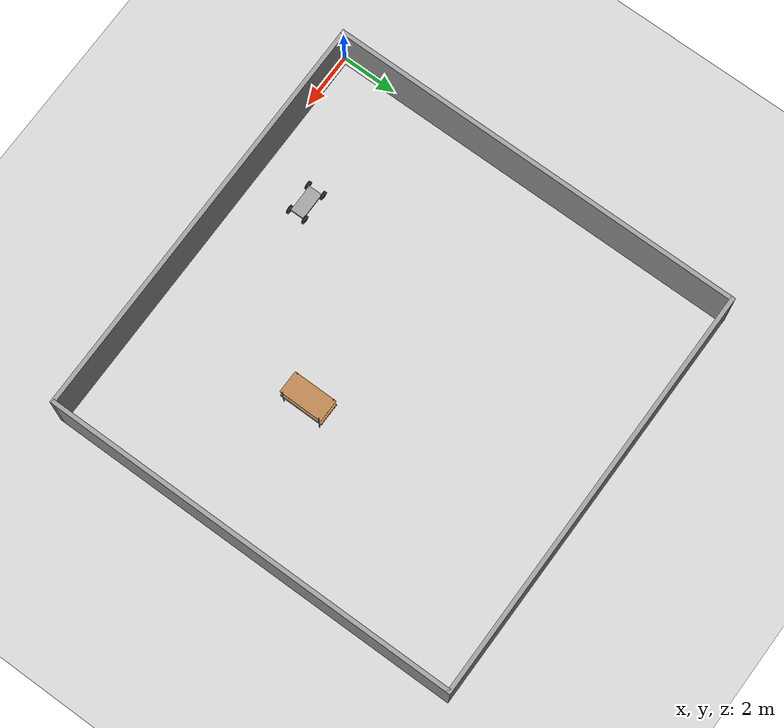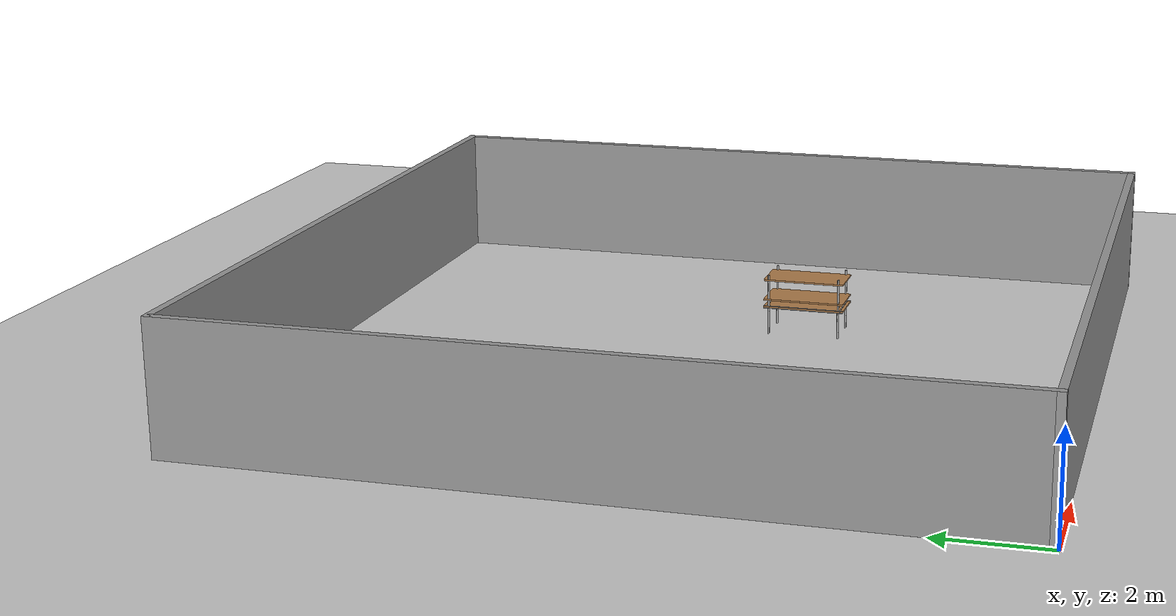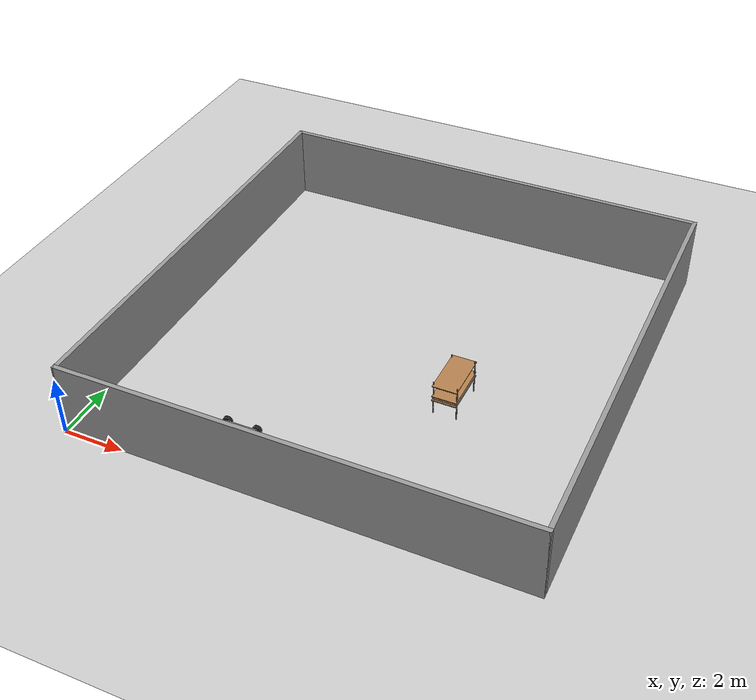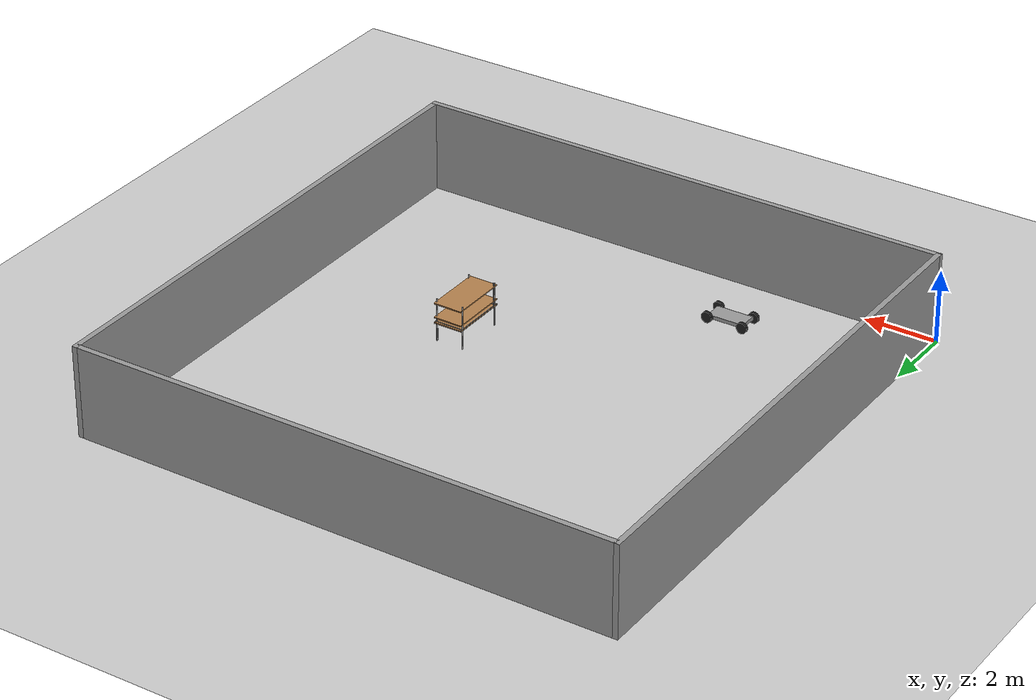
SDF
<sdf version="1.7">
 <world name="default">
  <model name="ground_plane">
   <static>1</static>
   <link name="link">
    <collision name="collision">
     <geometry><plane><normal>0 0 1</normal><size>100 100</size></plane></geometry>
     <surface><friction><ode><mu>100</mu><mu2>50</mu2></ode></friction></surface>
    </collision>
    <visual name="visual">
     <cast_shadows>0</cast_shadows>
     <geometry><plane><normal>0 0 1</normal><size>100 100</size></plane></geometry>
     <material>
      <script><uri>file://media/materials/scripts/gazebo.material</uri><name>Gazebo/Grey</name></script>
     </material>
    </visual>
   </link>
  </model>
  <model name="Wall">
   <pose>7.5 7.5 0 0 -0 0</pose>
   <link name="Wall_2">
    <collision name="Wall_2_Collision">
     <geometry><box><size>15 0.15 2.5</size></box></geometry>
     <pose>0 0 1.25 0 -0 0</pose>
    </collision>
    <visual name="Wall_2_Visual">
     <pose>0 0 1.25 0 -0 0</pose>
     <geometry><box><size>15 0.15 2.5</size></box></geometry>
     <material>
      <script><uri>file://media/materials/scripts/gazebo.material</uri><name>Gazebo/Grey</name></script>
      <ambient>1 1 1 1</ambient>
     </material>
     <meta><layer>0</layer></meta>
    </visual>
    <pose>-7.425 -0 0 0 -0 1.5708</pose>
   </link>
   <link name="Wall_5">
    <collision name="Wall_5_Collision">
     <geometry><box><size>15 0.15 2.5</size></box></geometry>
     <pose>0 0 1.25 0 -0 0</pose>
    </collision>
    <visual name="Wall_5_Visual">
     <pose>0 0 1.25 0 -0 0</pose>
     <geometry><box><size>15 0.15 2.5</size></box></geometry>
     <material>
      <script><uri>file://media/materials/scripts/gazebo.material</uri><name>Gazebo/Grey</name></script>
      <ambient>1 1 1 1</ambient>
     </material>
     <meta><layer>0</layer></meta>
    </visual>
    <pose>0 7.425 0 0 -0 0</pose>
   </link>
   <link name="Wall_7">
    <collision name="Wall_7_Collision">
     <geometry><box><size>15 0.15 2.5</size></box></geometry>
     <pose>0 0 1.25 0 -0 0</pose>
    </collision>
    <visual name="Wall_7_Visual">
     <pose>0 0 1.25 0 -0 0</pose>
     <geometry><box><size>15 0.15 2.5</size></box></geometry>
     <material>
      <script><uri>file://media/materials/scripts/gazebo.material</uri><name>Gazebo/Grey</name></script>
      <ambient>1 1 1 1</ambient>
     </material>
     <meta><layer>0</layer></meta>
    </visual>
    <pose>0 -7.425 0 0 -0 0</pose>
   </link>
   <link name="Wall_9">
    <collision name="Wall_9_Collision">
     <geometry><box><size>15 0.15 2.5</size></box></geometry>
     <pose>0 0 1.25 0 -0 0</pose>
    </collision>
    <visual name="Wall_9_Visual">
     <pose>0 0 1.25 0 -0 0</pose>
     <geometry><box><size>15 0.15 2.5</size></box></geometry>
     <material>
      <script><uri>file://media/materials/scripts/gazebo.material</uri><name>Gazebo/Grey</name></script>
      <ambient>1 1 1 1</ambient>
     </material>
     <meta><layer>0</layer></meta>
    </visual>
    <pose>7.425 -0 0 0 -0 -1.5708</pose>
   </link>
   <static>1</static>
  </model>
  <model name="warehouse_pallet">
   <link name="warehouse_pallet::link">
    <pose>0 0 -0 0 -0 1.57</pose>
    <inertial>
     <inertia>
      <ixx>0.0267042</ixx>
      <ixy>0</ixy>
      <ixz>0</ixz>
      <iyy>0.0937875</iyy>
      <iyz>0</iyz>
      <izz>0.120417</izz>
     </inertia>
     <mass>0.1</mass>
    </inertial>
    <visual name="holding1_visual">
     <pose>0 0.39 0.45 0 -0 0</pose>
     <geometry><box><size>1.6 0.02 0.05</size></box></geometry>
     <material>
      <script><uri>file://media/materials/scripts/gazebo.material</uri><name>Gazebo/Grey</name></script>
      <shader type="pixel"><normal_map>__default__</normal_map></shader>
      <ambient>0.3 0.3 0.3 1</ambient>
      <diffuse>0.7 0.7 0.7 1</diffuse>
      <specular>0.01 0.01 0.01 1</specular>
      <emissive>0 0 0 1</emissive>
     </material>
    </visual>
    <visual name="front_left_leg">
     <pose>0.7 0.38 0.5 0 -0 0</pose>
     <geometry><cylinder><radius>0.02</radius><length>1.2</length></cylinder></geometry>
     <material>
      <script><uri>file://media/materials/scripts/gazebo.material</uri><name>Gazebo/Grey</name></script>
      <shader type="pixel"><normal_map>__default__</normal_map></shader>
      <ambient>0.3 0.3 0.3 1</ambient>
      <diffuse>0.7 0.7 0.7 1</diffuse>
      <specular>0.01 0.01 0.01 1</specular>
      <emissive>0 0 0 1</emissive>
     </material>
    </visual>
    <visual name="front_right_leg">
     <pose>0.7 -0.38 0.5 0 -0 0</pose>
     <geometry><cylinder><radius>0.02</radius><length>1.2</length></cylinder></geometry>
     <material>
      <script><uri>file://media/materials/scripts/gazebo.material</uri><name>Gazebo/Grey</name></script>
      <shader type="pixel"><normal_map>__default__</normal_map></shader>
      <ambient>0.3 0.3 0.3 1</ambient>
      <diffuse>0.7 0.7 0.7 1</diffuse>
      <specular>0.01 0.01 0.01 1</specular>
      <emissive>0 0 0 1</emissive>
     </material>
    </visual>
    <visual name="back_right_leg">
     <pose>-0.7 -0.38 0.5 0 -0 0</pose>
     <geometry><cylinder><radius>0.02</radius><length>1.2</length></cylinder></geometry>
     <material>
      <script><uri>file://media/materials/scripts/gazebo.material</uri><name>Gazebo/Grey</name></script>
      <shader type="pixel"><normal_map>__default__</normal_map></shader>
      <ambient>0.3 0.3 0.3 1</ambient>
      <diffuse>0.7 0.7 0.7 1</diffuse>
      <specular>0.01 0.01 0.01 1</specular>
      <emissive>0 0 0 1</emissive>
     </material>
    </visual>
    <visual name="back_left_leg">
     <pose>-0.7 0.38 0.5 0 -0 0</pose>
     <geometry><cylinder><radius>0.02</radius><length>1.2</length></cylinder></geometry>
     <material>
      <script><uri>file://media/materials/scripts/gazebo.material</uri><name>Gazebo/Grey</name></script>
      <shader type="pixel"><normal_map>__default__</normal_map></shader>
      <ambient>0.3 0.3 0.3 1</ambient>
      <diffuse>0.7 0.7 0.7 1</diffuse>
      <specular>0.01 0.01 0.01 1</specular>
      <emissive>0 0 0 1</emissive>
     </material>
    </visual>
    <visual name="visual1">
     <pose>0 0 0.45 0 -0 0</pose>
     <geometry><box><size>1.6 0.8 0.03</size></box></geometry>
     <material>
      <script><uri>file://media/materials/scripts/gazebo.material</uri><name>Gazebo/Wood</name></script>
      <shader type="pixel"><normal_map>__default__</normal_map></shader>
      <ambient>1 1 1 1</ambient>
      <diffuse>1 1 1 1</diffuse>
      <specular>0.2 0.2 0.2 1</specular>
      <emissive>0 0 0 1</emissive>
     </material>
    </visual>
    <visual name="holding2_visual">
     <pose>0 -0.39 0.45 0 -0 0</pose>
     <geometry><box><size>1.6 0.02 0.05</size></box></geometry>
     <material>
      <script><uri>file://media/materials/scripts/gazebo.material</uri><name>Gazebo/Grey</name></script>
      <shader type="pixel"><normal_map>__default__</normal_map></shader>
      <ambient>0.3 0.3 0.3 1</ambient>
      <diffuse>0.7 0.7 0.7 1</diffuse>
      <specular>0.01 0.01 0.01 1</specular>
      <emissive>0 0 0 1</emissive>
     </material>
    </visual>
    <visual name="holding3_visual">
     <pose>0.735 0 0.45 0 -0 1.57</pose>
     <geometry><box><size>0.8 0.02 0.05</size></box></geometry>
     <material>
      <script><uri>file://media/materials/scripts/gazebo.material</uri><name>Gazebo/Grey</name></script>
      <shader type="pixel"><normal_map>__default__</normal_map></shader>
      <ambient>0.3 0.3 0.3 1</ambient>
      <diffuse>0.7 0.7 0.7 1</diffuse>
      <specular>0.01 0.01 0.01 1</specular>
      <emissive>0 0 0 1</emissive>
     </material>
    </visual>
    <visual name="holding4_visual">
     <pose>-0.735 0 0.45 0 -0 1.57</pose>
     <geometry><box><size>0.8 0.02 0.05</size></box></geometry>
     <material>
      <script><uri>file://media/materials/scripts/gazebo.material</uri><name>Gazebo/Grey</name></script>
      <shader type="pixel"><normal_map>__default__</normal_map></shader>
      <ambient>0.3 0.3 0.3 1</ambient>
      <diffuse>0.7 0.7 0.7 1</diffuse>
      <specular>0.01 0.01 0.01 1</specular>
      <emissive>0 0 0 1</emissive>
     </material>
    </visual>
    <visual name="visual2">
     <pose>0 0 0.6 0 -0 0</pose>
     <geometry><box><size>1.6 0.8 0.03</size></box></geometry>
     <material>
      <script><uri>file://media/materials/scripts/gazebo.material</uri><name>Gazebo/Wood</name></script>
      <shader type="pixel"><normal_map>__default__</normal_map></shader>
      <ambient>1 1 1 1</ambient>
      <diffuse>1 1 1 1</diffuse>
      <specular>0.2 0.2 0.2 1</specular>
      <emissive>0 0 0 1</emissive>
     </material>
    </visual>
    <visual name="visual3">
     <pose>0 0 1 0 -0 0</pose>
     <geometry><box><size>1.6 0.8 0.03</size></box></geometry>
     <material>
      <script><uri>file://media/materials/scripts/gazebo.material</uri><name>Gazebo/Wood</name></script>
      <shader type="pixel"><normal_map>__default__</normal_map></shader>
      <ambient>1 1 1 1</ambient>
      <diffuse>1 1 1 1</diffuse>
      <specular>0.2 0.2 0.2 1</specular>
      <emissive>0 0 0 1</emissive>
     </material>
    </visual>
    <collision name="surface1">
     <pose>0 0 0.45 0 -0 0</pose>
     <geometry><box><size>1.6 0.8 0.03</size></box></geometry>
     <surface>
      <friction>
       <ode><mu>20</mu><mu2>20</mu2><fdir1>0 0 0</fdir1><slip1>0</slip1><slip2>0</slip2></ode>
       <torsional>
        <coefficient>1</coefficient>
        <patch_radius>0</patch_radius>
        <surface_radius>0</surface_radius>
        <use_patch_radius>1</use_patch_radius>
        <ode><slip>0</slip></ode>
       </torsional>
      </friction>
      <bounce><restitution_coefficient>0</restitution_coefficient><threshold>1e+06</threshold></bounce>
      <contact>
       <collide_without_contact>0</collide_without_contact>
       <collide_without_contact_bitmask>1</collide_without_contact_bitmask>
       <collide_bitmask>1</collide_bitmask>
       <ode>
        <soft_cfm>0</soft_cfm>
        <soft_erp>0.2</soft_erp>
        <kp>1e+13</kp>
        <kd>1</kd>
        <max_vel>0.01</max_vel>
        <min_depth>0</min_depth>
       </ode>
       <bullet>
        <split_impulse>1</split_impulse>
        <split_impulse_penetration_threshold>-0.01</split_impulse_penetration_threshold>
        <soft_cfm>0</soft_cfm>
        <soft_erp>0.2</soft_erp>
        <kp>1e+13</kp>
        <kd>1</kd>
       </bullet>
      </contact>
     </surface>
    </collision>
    <collision name="holding1_collision">
     <pose>0 0.39 0.45 0 -0 0</pose>
     <geometry><box><size>1.6 0.02 0.05</size></box></geometry>
     <surface>
      <friction>
       <ode><mu>1e+09</mu><mu2>1e+09</mu2><fdir1>0 0 0</fdir1><slip1>0</slip1><slip2>0</slip2></ode>
       <torsional>
        <coefficient>1</coefficient>
        <patch_radius>0</patch_radius>
        <surface_radius>0</surface_radius>
        <use_patch_radius>1</use_patch_radius>
        <ode><slip>0</slip></ode>
       </torsional>
      </friction>
      <bounce><restitution_coefficient>0</restitution_coefficient><threshold>1e+06</threshold></bounce>
      <contact>
       <collide_without_contact>0</collide_without_contact>
       <collide_without_contact_bitmask>1</collide_without_contact_bitmask>
       <collide_bitmask>1</collide_bitmask>
       <ode>
        <soft_cfm>0</soft_cfm>
        <soft_erp>0.2</soft_erp>
        <kp>1e+13</kp>
        <kd>1</kd>
        <max_vel>0.01</max_vel>
        <min_depth>0</min_depth>
       </ode>
       <bullet>
        <split_impulse>1</split_impulse>
        <split_impulse_penetration_threshold>-0.01</split_impulse_penetration_threshold>
        <soft_cfm>0</soft_cfm>
        <soft_erp>0.2</soft_erp>
        <kp>1e+13</kp>
        <kd>1</kd>
       </bullet>
      </contact>
     </surface>
    </collision>
    <collision name="holding2_collision">
     <pose>0 -0.39 0.45 0 -0 0</pose>
     <geometry><box><size>1.6 0.02 0.05</size></box></geometry>
     <surface>
      <friction>
       <ode><mu>1e+09</mu><mu2>1e+09</mu2><fdir1>0 0 0</fdir1><slip1>0</slip1><slip2>0</slip2></ode>
       <torsional>
        <coefficient>1</coefficient>
        <patch_radius>0</patch_radius>
        <surface_radius>0</surface_radius>
        <use_patch_radius>1</use_patch_radius>
        <ode><slip>0</slip></ode>
       </torsional>
      </friction>
      <bounce><restitution_coefficient>0</restitution_coefficient><threshold>1e+06</threshold></bounce>
      <contact>
       <collide_without_contact>0</collide_without_contact>
       <collide_without_contact_bitmask>1</collide_without_contact_bitmask>
       <collide_bitmask>1</collide_bitmask>
       <ode>
        <soft_cfm>0</soft_cfm>
        <soft_erp>0.2</soft_erp>
        <kp>1e+13</kp>
        <kd>1</kd>
        <max_vel>0.01</max_vel>
        <min_depth>0</min_depth>
       </ode>
       <bullet>
        <split_impulse>1</split_impulse>
        <split_impulse_penetration_threshold>-0.01</split_impulse_penetration_threshold>
        <soft_cfm>0</soft_cfm>
        <soft_erp>0.2</soft_erp>
        <kp>1e+13</kp>
        <kd>1</kd>
       </bullet>
      </contact>
     </surface>
    </collision>
    <collision name="holding3_collision">
     <pose>0.735 0 0.45 0 -0 1.57</pose>
     <geometry><box><size>0.8 0.02 0.05</size></box></geometry>
     <surface>
      <friction>
       <ode><mu>1e+09</mu><mu2>1e+09</mu2><fdir1>0 0 0</fdir1><slip1>0</slip1><slip2>0</slip2></ode>
       <torsional>
        <coefficient>1</coefficient>
        <patch_radius>0</patch_radius>
        <surface_radius>0</surface_radius>
        <use_patch_radius>1</use_patch_radius>
        <ode><slip>0</slip></ode>
       </torsional>
      </friction>
      <bounce><restitution_coefficient>0</restitution_coefficient><threshold>1e+06</threshold></bounce>
      <contact>
       <collide_without_contact>0</collide_without_contact>
       <collide_without_contact_bitmask>1</collide_without_contact_bitmask>
       <collide_bitmask>1</collide_bitmask>
       <ode>
        <soft_cfm>0</soft_cfm>
        <soft_erp>0.2</soft_erp>
        <kp>1e+13</kp>
        <kd>1</kd>
        <max_vel>0.01</max_vel>
        <min_depth>0</min_depth>
       </ode>
       <bullet>
        <split_impulse>1</split_impulse>
        <split_impulse_penetration_threshold>-0.01</split_impulse_penetration_threshold>
        <soft_cfm>0</soft_cfm>
        <soft_erp>0.2</soft_erp>
        <kp>1e+13</kp>
        <kd>1</kd>
       </bullet>
      </contact>
     </surface>
    </collision>
    <collision name="holding4_collision">
     <pose>-0.735 0 0.45 0 -0 1.57</pose>
     <geometry><box><size>0.8 0.02 0.05</size></box></geometry>
     <surface>
      <friction>
       <ode><mu>1e+09</mu><mu2>1e+09</mu2><fdir1>0 0 0</fdir1><slip1>0</slip1><slip2>0</slip2></ode>
       <torsional>
        <coefficient>1</coefficient>
        <patch_radius>0</patch_radius>
        <surface_radius>0</surface_radius>
        <use_patch_radius>1</use_patch_radius>
        <ode><slip>0</slip></ode>
       </torsional>
      </friction>
      <bounce><restitution_coefficient>0</restitution_coefficient><threshold>1e+06</threshold></bounce>
      <contact>
       <collide_without_contact>0</collide_without_contact>
       <collide_without_contact_bitmask>1</collide_without_contact_bitmask>
       <collide_bitmask>1</collide_bitmask>
       <ode>
        <soft_cfm>0</soft_cfm>
        <soft_erp>0.2</soft_erp>
        <kp>1e+13</kp>
        <kd>1</kd>
        <max_vel>0.01</max_vel>
        <min_depth>0</min_depth>
       </ode>
       <bullet>
        <split_impulse>1</split_impulse>
        <split_impulse_penetration_threshold>-0.01</split_impulse_penetration_threshold>
        <soft_cfm>0</soft_cfm>
        <soft_erp>0.2</soft_erp>
        <kp>1e+13</kp>
        <kd>1</kd>
       </bullet>
      </contact>
     </surface>
    </collision>
    <collision name="surface3">
     <pose>0 0 1 0 -0 0</pose>
     <geometry><box><size>1.6 0.8 0.03</size></box></geometry>
     <surface>
      <friction>
       <ode><mu>2.5</mu><mu2>2.5</mu2><fdir1>0 0 0</fdir1><slip1>0</slip1><slip2>0</slip2></ode>
       <torsional>
        <coefficient>1</coefficient>
        <patch_radius>0</patch_radius>
        <surface_radius>0</surface_radius>
        <use_patch_radius>1</use_patch_radius>
        <ode><slip>0</slip></ode>
       </torsional>
      </friction>
      <bounce><restitution_coefficient>0</restitution_coefficient><threshold>1e+06</threshold></bounce>
      <contact>
       <collide_without_contact>0</collide_without_contact>
       <collide_without_contact_bitmask>1</collide_without_contact_bitmask>
       <collide_bitmask>1</collide_bitmask>
       <ode>
        <soft_cfm>0</soft_cfm>
        <soft_erp>0.2</soft_erp>
        <kp>1e+13</kp>
        <kd>1</kd>
        <max_vel>0.01</max_vel>
        <min_depth>0</min_depth>
       </ode>
       <bullet>
        <split_impulse>1</split_impulse>
        <split_impulse_penetration_threshold>-0.01</split_impulse_penetration_threshold>
        <soft_cfm>0</soft_cfm>
        <soft_erp>0.2</soft_erp>
        <kp>1e+13</kp>
        <kd>1</kd>
       </bullet>
      </contact>
     </surface>
    </collision>
    <collision name="surface2">
     <pose>0 0 0.6 0 -0 0</pose>
     <geometry><box><size>1.6 0.8 0.03</size></box></geometry>
     <surface>
      <friction>
       <ode><mu>2.5</mu><mu2>2.5</mu2><fdir1>0 0 0</fdir1><slip1>0</slip1><slip2>0</slip2></ode>
       <torsional>
        <coefficient>1</coefficient>
        <patch_radius>0</patch_radius>
        <surface_radius>0</surface_radius>
        <use_patch_radius>1</use_patch_radius>
        <ode><slip>0</slip></ode>
       </torsional>
      </friction>
      <bounce><restitution_coefficient>0</restitution_coefficient><threshold>1e+06</threshold></bounce>
      <contact>
       <collide_without_contact>0</collide_without_contact>
       <collide_without_contact_bitmask>1</collide_without_contact_bitmask>
       <collide_bitmask>1</collide_bitmask>
       <ode>
        <soft_cfm>0</soft_cfm>
        <soft_erp>0.2</soft_erp>
        <kp>1e+13</kp>
        <kd>1</kd>
        <max_vel>0.01</max_vel>
        <min_depth>0</min_depth>
       </ode>
       <bullet>
        <split_impulse>1</split_impulse>
        <split_impulse_penetration_threshold>-0.01</split_impulse_penetration_threshold>
        <soft_cfm>0</soft_cfm>
        <soft_erp>0.2</soft_erp>
        <kp>1e+13</kp>
        <kd>1</kd>
       </bullet>
      </contact>
     </surface>
    </collision>
    <collision name="front_right_leg">
     <pose>0.7 -0.38 0.5 0 -0 0</pose>
     <geometry><cylinder><radius>0.02</radius><length>1</length></cylinder></geometry>
     <surface>
      <friction>
       <ode><mu>0.1</mu><mu2>0.1</mu2><fdir1>0 0 0</fdir1><slip1>0</slip1><slip2>0</slip2></ode>
       <torsional>
        <coefficient>1</coefficient>
        <patch_radius>0</patch_radius>
        <surface_radius>0</surface_radius>
        <use_patch_radius>1</use_patch_radius>
        <ode><slip>0</slip></ode>
       </torsional>
      </friction>
      <bounce><restitution_coefficient>0</restitution_coefficient><threshold>1e+06</threshold></bounce>
      <contact>
       <collide_without_contact>0</collide_without_contact>
       <collide_without_contact_bitmask>1</collide_without_contact_bitmask>
       <collide_bitmask>1</collide_bitmask>
       <ode>
        <soft_cfm>0</soft_cfm>
        <soft_erp>0.2</soft_erp>
        <kp>1e+13</kp>
        <kd>1</kd>
        <max_vel>0.01</max_vel>
        <min_depth>0</min_depth>
       </ode>
       <bullet>
        <split_impulse>1</split_impulse>
        <split_impulse_penetration_threshold>-0.01</split_impulse_penetration_threshold>
        <soft_cfm>0</soft_cfm>
        <soft_erp>0.2</soft_erp>
        <kp>1e+13</kp>
        <kd>1</kd>
       </bullet>
      </contact>
     </surface>
    </collision>
    <collision name="back_right_leg">
     <pose>-0.7 -0.38 0.5 0 -0 0</pose>
     <geometry><cylinder><radius>0.02</radius><length>1.2</length></cylinder></geometry>
     <surface>
      <friction>
       <ode><mu>0.1</mu><mu2>0.1</mu2><fdir1>0 0 0</fdir1><slip1>0</slip1><slip2>0</slip2></ode>
       <torsional>
        <coefficient>1</coefficient>
        <patch_radius>0</patch_radius>
        <surface_radius>0</surface_radius>
        <use_patch_radius>1</use_patch_radius>
        <ode><slip>0</slip></ode>
       </torsional>
      </friction>
      <bounce><restitution_coefficient>0</restitution_coefficient><threshold>1e+06</threshold></bounce>
      <contact>
       <collide_without_contact>0</collide_without_contact>
       <collide_without_contact_bitmask>1</collide_without_contact_bitmask>
       <collide_bitmask>1</collide_bitmask>
       <ode>
        <soft_cfm>0</soft_cfm>
        <soft_erp>0.2</soft_erp>
        <kp>1e+13</kp>
        <kd>1</kd>
        <max_vel>0.01</max_vel>
        <min_depth>0</min_depth>
       </ode>
       <bullet>
        <split_impulse>1</split_impulse>
        <split_impulse_penetration_threshold>-0.01</split_impulse_penetration_threshold>
        <soft_cfm>0</soft_cfm>
        <soft_erp>0.2</soft_erp>
        <kp>1e+13</kp>
        <kd>1</kd>
       </bullet>
      </contact>
     </surface>
    </collision>
    <collision name="front_left_leg">
     <pose>0.7 0.38 0.5 0 -0 0</pose>
     <geometry><cylinder><radius>0.02</radius><length>1.2</length></cylinder></geometry>
     <surface>
      <friction>
       <ode><mu>0.1</mu><mu2>0.1</mu2><fdir1>0 0 0</fdir1><slip1>0</slip1><slip2>0</slip2></ode>
       <torsional>
        <coefficient>1</coefficient>
        <patch_radius>0</patch_radius>
        <surface_radius>0</surface_radius>
        <use_patch_radius>1</use_patch_radius>
        <ode><slip>0</slip></ode>
       </torsional>
      </friction>
      <bounce><restitution_coefficient>0</restitution_coefficient><threshold>1e+06</threshold></bounce>
      <contact>
       <collide_without_contact>0</collide_without_contact>
       <collide_without_contact_bitmask>1</collide_without_contact_bitmask>
       <collide_bitmask>1</collide_bitmask>
       <ode>
        <soft_cfm>0</soft_cfm>
        <soft_erp>0.2</soft_erp>
        <kp>1e+13</kp>
        <kd>1</kd>
        <max_vel>0.01</max_vel>
        <min_depth>0</min_depth>
       </ode>
       <bullet>
        <split_impulse>1</split_impulse>
        <split_impulse_penetration_threshold>-0.01</split_impulse_penetration_threshold>
        <soft_cfm>0</soft_cfm>
        <soft_erp>0.2</soft_erp>
        <kp>1e+13</kp>
        <kd>1</kd>
       </bullet>
      </contact>
     </surface>
    </collision>
    <collision name="back_left_leg">
     <pose>-0.7 0.38 0.5 0 -0 0</pose>
     <geometry><cylinder><radius>0.02</radius><length>1.2</length></cylinder></geometry>
     <surface>
      <friction>
       <ode><mu>0.1</mu><mu2>0.1</mu2><fdir1>0 0 0</fdir1><slip1>0</slip1><slip2>0</slip2></ode>
       <torsional>
        <coefficient>1</coefficient>
        <patch_radius>0</patch_radius>
        <surface_radius>0</surface_radius>
        <use_patch_radius>1</use_patch_radius>
        <ode><slip>0</slip></ode>
       </torsional>
      </friction>
      <bounce><restitution_coefficient>0</restitution_coefficient><threshold>1e+06</threshold></bounce>
      <contact>
       <collide_without_contact>0</collide_without_contact>
       <collide_without_contact_bitmask>1</collide_without_contact_bitmask>
       <collide_bitmask>1</collide_bitmask>
       <ode>
        <soft_cfm>0</soft_cfm>
        <soft_erp>0.2</soft_erp>
        <kp>1e+13</kp>
        <kd>1</kd>
        <max_vel>0.01</max_vel>
        <min_depth>0</min_depth>
       </ode>
       <bullet>
        <split_impulse>1</split_impulse>
        <split_impulse_penetration_threshold>-0.01</split_impulse_penetration_threshold>
        <soft_cfm>0</soft_cfm>
        <soft_erp>0.2</soft_erp>
        <kp>1e+13</kp>
        <kd>1</kd>
       </bullet>
      </contact>
     </surface>
    </collision>
   </link>
   <static>0</static>
   <pose>9.99998 5.99947 0.099998 0 7e-06 -0.004546</pose>
  </model>
  <model name="cart_front_steer">
   <link name="chassis">
    <pose>0 0 0.15 0 -0 0</pose>
    <inertial>
     <pose>0.1 0 0 0 -0 0</pose>
     <mass>10</mass>
     <inertia>
      <ixx>0.216667</ixx>
      <iyy>0.841667</iyy>
      <izz>1.04167</izz>
      <ixy>0</ixy>
      <ixz>0</ixz>
      <iyz>0</iyz>
     </inertia>
    </inertial>
    <collision name="collision"><geometry><box><size>1 0.5 0.1</size></box></geometry></collision>
    <visual name="visual">
     <geometry><box><size>1 0.5 0.1</size></box></geometry>
     <material>
      <script><uri>file://media/materials/scripts/gazebo.material</uri><name>Gazebo/Grey</name></script>
     </material>
    </visual>
   </link>
   <link name="wheel_front_left">
    <pose>0.5 0.298 0.15 -1.5708 -0.087266 0</pose>
    <inertial>
     <mass>0.5</mass>
     <inertia>
      <ixx>0.00307917</ixx>
      <iyy>0.00307917</iyy>
      <izz>0.005625</izz>
      <ixy>0</ixy>
      <ixz>0</ixz>
      <iyz>0</iyz>
     </inertia>
    </inertial>
    <collision name="collision">
     <geometry><cylinder><radius>0.15</radius><length>0.08</length></cylinder></geometry>
    </collision>
    <visual name="visual">
     <geometry><cylinder><radius>0.15</radius><length>0.08</length></cylinder></geometry>
     <material>
      <script><uri>file://media/materials/scripts/gazebo.material</uri><name>Gazebo/Black</name></script>
     </material>
    </visual>
   </link>
   <joint name="wheel_front_left_steer_spin" type="universal">
    <parent>chassis</parent>
    <child>wheel_front_left</child>
    <axis>
     <xyz>0 -1 0</xyz>
     <limit><lower>-0.610865</lower><upper>0.610865</upper></limit>
     <dynamics><spring_reference>0</spring_reference><spring_stiffness>0</spring_stiffness></dynamics>
    </axis>
    <axis2>
     <xyz>0 0 1</xyz>
     <limit><upper>1e+16</upper><lower>-1e+16</lower></limit>
     <dynamics><spring_reference>0</spring_reference><spring_stiffness>0</spring_stiffness></dynamics>
    </axis2>
   </joint>
   <link name="wheel_front_right">
    <pose>0.5 -0.298 0.15 -1.5708 -0.087266 0</pose>
    <inertial>
     <mass>0.5</mass>
     <inertia>
      <ixx>0.00307917</ixx>
      <iyy>0.00307917</iyy>
      <izz>0.005625</izz>
      <ixy>0</ixy>
      <ixz>0</ixz>
      <iyz>0</iyz>
     </inertia>
    </inertial>
    <collision name="collision">
     <geometry><cylinder><radius>0.15</radius><length>0.08</length></cylinder></geometry>
    </collision>
    <visual name="visual">
     <geometry><cylinder><radius>0.15</radius><length>0.08</length></cylinder></geometry>
     <material>
      <script><uri>file://media/materials/scripts/gazebo.material</uri><name>Gazebo/Black</name></script>
     </material>
    </visual>
   </link>
   <joint name="wheel_front_right_steer_spin" type="universal">
    <parent>chassis</parent>
    <child>wheel_front_right</child>
    <axis>
     <xyz>0 -1 0</xyz>
     <limit><lower>-0.610865</lower><upper>0.610865</upper></limit>
     <dynamics><spring_reference>0</spring_reference><spring_stiffness>0</spring_stiffness></dynamics>
    </axis>
    <axis2>
     <xyz>0 0 1</xyz>
     <limit><upper>1e+16</upper><lower>-1e+16</lower></limit>
     <dynamics><spring_reference>0</spring_reference><spring_stiffness>0</spring_stiffness></dynamics>
    </axis2>
   </joint>
   <link name="wheel_rear_left">
    <pose>-0.5 0.298 0.15 -1.5708 0 0</pose>
    <inertial>
     <mass>0.5</mass>
     <inertia>
      <ixx>0.00307917</ixx>
      <iyy>0.00307917</iyy>
      <izz>0.005625</izz>
      <ixy>0</ixy>
      <ixz>0</ixz>
      <iyz>0</iyz>
     </inertia>
    </inertial>
    <collision name="collision">
     <geometry><cylinder><radius>0.15</radius><length>0.08</length></cylinder></geometry>
    </collision>
    <visual name="visual">
     <geometry><cylinder><radius>0.15</radius><length>0.08</length></cylinder></geometry>
     <material>
      <script><uri>file://media/materials/scripts/gazebo.material</uri><name>Gazebo/Black</name></script>
     </material>
    </visual>
   </link>
   <joint name="wheel_rear_left_spin" type="revolute">
    <parent>chassis</parent>
    <child>wheel_rear_left</child>
    <axis>
     <xyz>0 0 1</xyz>
     <limit><lower>-1e+16</lower><upper>1e+16</upper></limit>
     <dynamics><spring_reference>0</spring_reference><spring_stiffness>0</spring_stiffness></dynamics>
    </axis>
   </joint>
   <link name="wheel_rear_right">
    <pose>-0.5 -0.298 0.15 -1.5708 0 0</pose>
    <inertial>
     <mass>0.5</mass>
     <inertia>
      <ixx>0.00307917</ixx>
      <iyy>0.00307917</iyy>
      <izz>0.005625</izz>
      <ixy>0</ixy>
      <ixz>0</ixz>
      <iyz>0</iyz>
     </inertia>
    </inertial>
    <collision name="collision">
     <geometry><cylinder><radius>0.15</radius><length>0.08</length></cylinder></geometry>
    </collision>
    <visual name="visual">
     <geometry><cylinder><radius>0.15</radius><length>0.08</length></cylinder></geometry>
     <material>
      <script><uri>file://media/materials/scripts/gazebo.material</uri><name>Gazebo/Black</name></script>
     </material>
    </visual>
   </link>
   <joint name="wheel_rear_right_spin" type="revolute">
    <parent>chassis</parent>
    <child>wheel_rear_right</child>
    <axis>
     <xyz>0 0 1</xyz>
     <limit><lower>-1e+16</lower><upper>1e+16</upper></limit>
     <dynamics><spring_reference>0</spring_reference><spring_stiffness>0</spring_stiffness></dynamics>
    </axis>
   </joint>
   <pose>4.74539 1.97767 2e-06 -1e-06 -1e-06 0.008356</pose>
  </model>
 </world>
</sdf>
